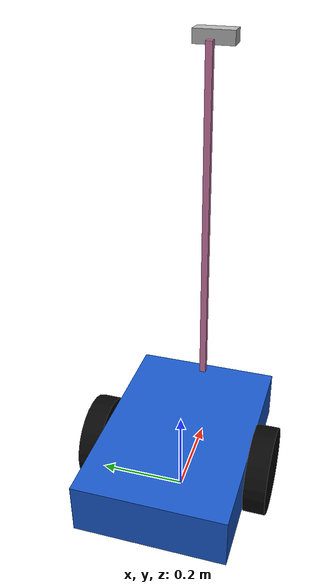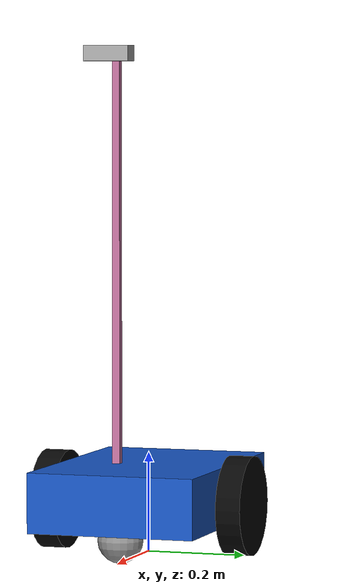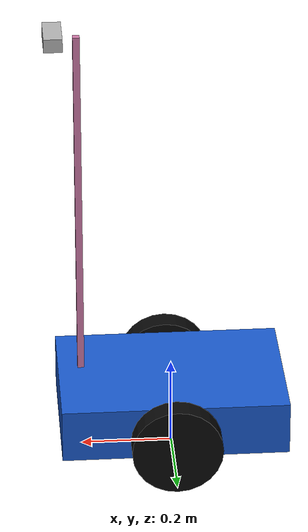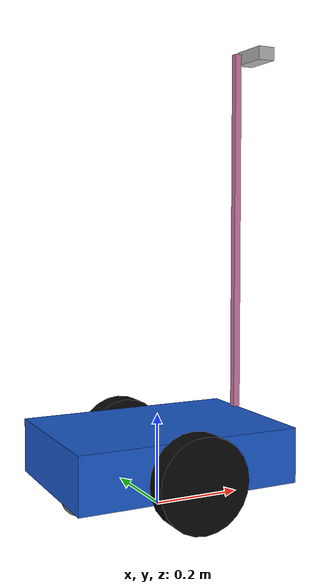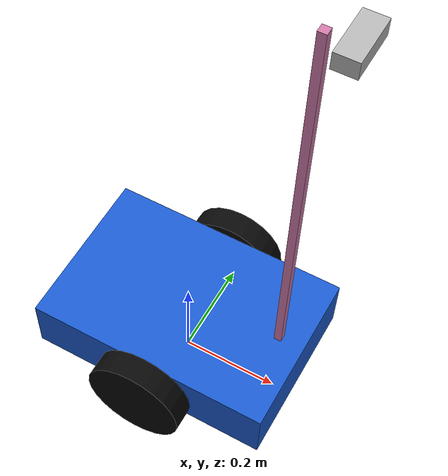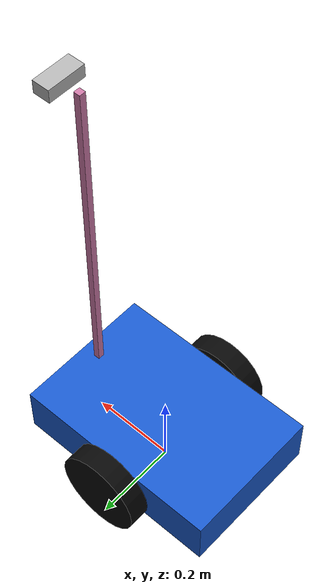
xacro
<?xml version="1.0"?>
<!-- Geometry adapted from the user's robot_nav_course differential-drive model. -->
<robot xmlns:xacro="http://www.ros.org/wiki/xacro" name="follow_bot">
  <xacro:property name="wheel_radius" value="0.10"/>
  <xacro:property name="wheel_width" value="0.05"/>
  <xacro:property name="wheel_y" value="0.195"/>
  <xacro:macro name="box_inertia" params="mass x y z">
    <inertia ixx="${mass*(y*y+z*z)/12}" ixy="0" ixz="0"
      iyy="${mass*(x*x+z*z)/12}" iyz="0" izz="${mass*(x*x+y*y)/12}"/>
  </xacro:macro>
  <link name="base_footprint"/>
  <joint name="base_joint" type="fixed">
    <parent link="base_footprint"/><child link="base_link"/><origin xyz="0 0 0.12"/>
  </joint>
  <link name="base_link">
    <visual><geometry><box size="0.50 0.34 0.12"/></geometry>
      <material name="blue"><color rgba="0.1 0.35 0.8 1"/></material></visual>
    <collision><geometry><box size="0.50 0.34 0.12"/></geometry></collision>
    <inertial><mass value="8.0"/><xacro:box_inertia mass="8.0" x="0.5" y="0.34" z="0.12"/></inertial>
  </link>
  <xacro:macro name="wheel" params="side y">
    <link name="${side}_wheel_link">
      <visual><origin rpy="1.5707963268 0 0"/>
        <geometry><cylinder radius="${wheel_radius}" length="${wheel_width}"/></geometry>
        <material name="black"><color rgba="0.03 0.03 0.03 1"/></material></visual>
      <collision><origin rpy="1.5707963268 0 0"/>
        <geometry><cylinder radius="${wheel_radius}" length="${wheel_width}"/></geometry></collision>
      <inertial><mass value="0.8"/>
        <inertia ixx="${0.8*(3*wheel_radius*wheel_radius+wheel_width*wheel_width)/12}" ixy="0" ixz="0"
          iyy="${0.8*wheel_radius*wheel_radius/2}" iyz="0"
          izz="${0.8*(3*wheel_radius*wheel_radius+wheel_width*wheel_width)/12}"/></inertial>
    </link>
    <joint name="${side}_wheel_joint" type="continuous">
      <parent link="base_link"/><child link="${side}_wheel_link"/>
      <origin xyz="0 ${y} -0.02"/><axis xyz="0 1 0"/><dynamics damping="0.05" friction="0"/>
    </joint>
    <gazebo reference="${side}_wheel_link"><material>Gazebo/Black</material><mu1>1.0</mu1><mu2>1.0</mu2></gazebo>
  </xacro:macro>
  <xacro:wheel side="left" y="${wheel_y}"/><xacro:wheel side="right" y="${-wheel_y}"/>
  <xacro:macro name="support" params="name x">
    <link name="${name}">
      <visual><geometry><sphere radius="0.045"/></geometry></visual>
      <collision><geometry><sphere radius="0.045"/></geometry></collision>
      <inertial><mass value="0.2"/><inertia ixx="0.000162" ixy="0" ixz="0" iyy="0.000162" iyz="0" izz="0.000162"/></inertial>
    </link>
    <joint name="${name}_joint" type="fixed">
      <parent link="base_link"/><child link="${name}"/><origin xyz="${x} 0 -0.075"/>
    </joint>
    <gazebo reference="${name}"><material>Gazebo/Grey</material><mu1>0.02</mu1><mu2>0.02</mu2></gazebo>
  </xacro:macro>
  <xacro:support name="front_support" x="0.18"/><xacro:support name="rear_support" x="-0.18"/>
  <link name="camera_mast">
    <visual><geometry><box size="0.015 0.015 0.8"/></geometry></visual>
    <collision><geometry><box size="0.015 0.015 0.8"/></geometry></collision>
    <inertial><mass value="0.1"/><xacro:box_inertia mass="0.1" x="0.015" y="0.015" z="0.8"/></inertial>
  </link>
  <joint name="camera_mast_joint" type="fixed">
    <parent link="base_link"/><child link="camera_mast"/><origin xyz="0.20 0 0.48"/>
  </joint>
  <link name="camera_link">
    <visual><geometry><box size="0.04 0.09 0.03"/></geometry>
      <material name="camera_gray"><color rgba="0.7 0.7 0.7 1"/></material></visual>
    <collision><geometry><box size="0.04 0.09 0.03"/></geometry></collision>
    <inertial><mass value="0.08"/><xacro:box_inertia mass="0.08" x="0.04" y="0.09" z="0.03"/></inertial>
  </link>
  <joint name="camera_joint" type="fixed">
    <parent link="base_link"/><child link="camera_link"/><origin xyz="0.25 0 0.88"/>
  </joint>
  <link name="camera_color_optical_frame"/>
  <joint name="camera_optical_joint" type="fixed">
    <parent link="camera_link"/><child link="camera_color_optical_frame"/>
    <origin rpy="-1.5707963268 0 -1.5707963268"/>
  </joint>
  <gazebo reference="base_link"><material>Gazebo/Blue</material></gazebo>
  <gazebo>
    <plugin name="follow_diff_drive" filename="libgazebo_ros_diff_drive.so">
      <ros><namespace>/</namespace></ros>
      <update_rate>50</update_rate>
      <left_joint>left_wheel_joint</left_joint><right_joint>right_wheel_joint</right_joint>
      <wheel_separation>${2*wheel_y}</wheel_separation><wheel_diameter>${2*wheel_radius}</wheel_diameter>
      <max_wheel_torque>20</max_wheel_torque><max_wheel_acceleration>1.5</max_wheel_acceleration>
      <command_topic>cmd_vel</command_topic><odometry_topic>odom</odometry_topic>
      <odometry_frame>odom</odometry_frame><robot_base_frame>base_footprint</robot_base_frame>
      <publish_odom>true</publish_odom><publish_odom_tf>true</publish_odom_tf><publish_wheel_tf>true</publish_wheel_tf>
    </plugin>
  </gazebo>
</robot>
